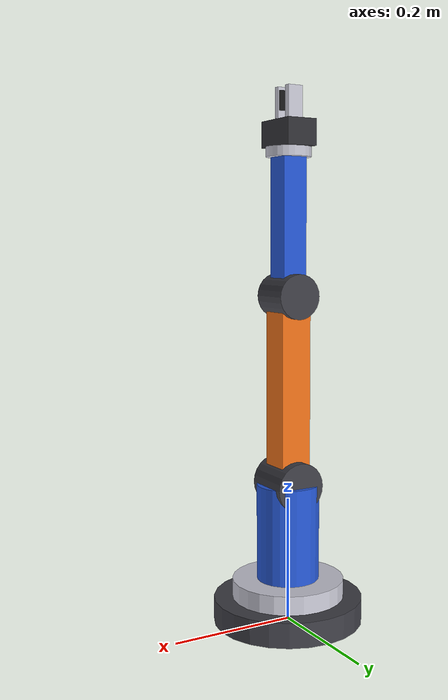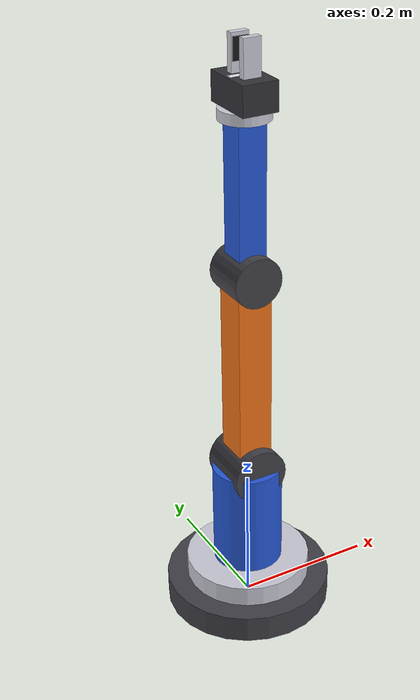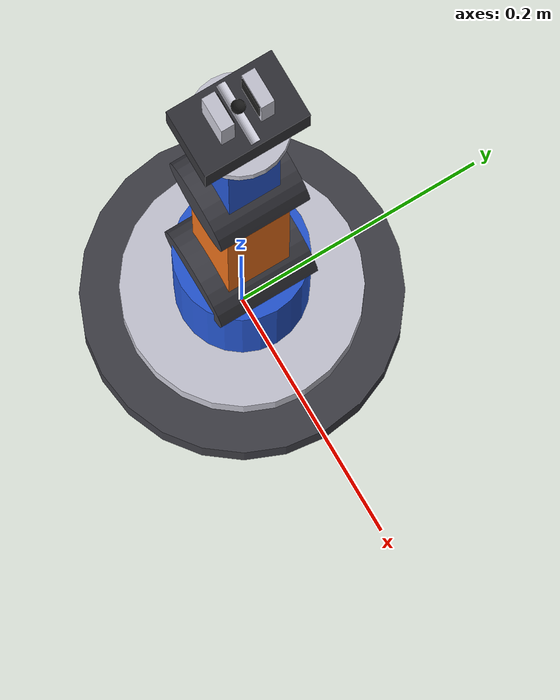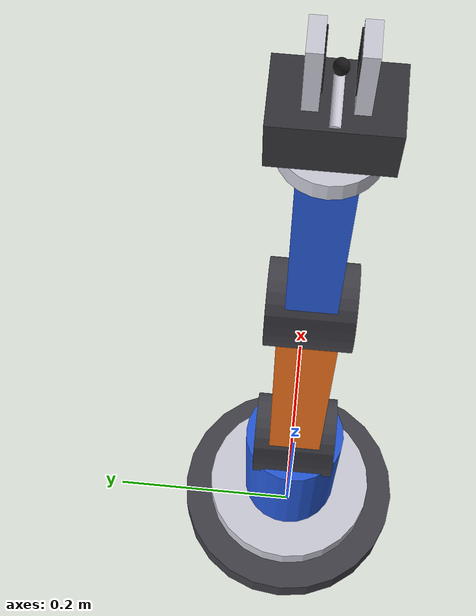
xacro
<?xml version="1.0"?>
<robot xmlns:xacro="http://www.ros.org/wiki/xacro" name="arm_3dof">

  <xacro:arg name="gazebo_system" default="ignition"/>
  <xacro:arg name="controllers_yaml" default="config/controllers.yaml"/>

  <!-- ==================== Materials for RViz ==================== -->
  <material name="dark_grey">
    <color rgba="0.25 0.25 0.28 1.0"/>
  </material>
  <material name="silver">
    <color rgba="0.8 0.8 0.85 1.0"/>
  </material>
  <material name="industrial_orange">
    <color rgba="0.95 0.45 0.1 1.0"/>
  </material>
  <material name="accent_blue">
    <color rgba="0.15 0.35 0.85 1.0"/>
  </material>
  <material name="gripper_body">
    <color rgba="0.2 0.2 0.22 1.0"/>
  </material>
  <material name="finger_pad">
    <color rgba="0.1 0.1 0.1 1.0"/>
  </material>

  <!-- ==================== World Anchor Link ==================== -->
  <!-- Anchoring base_link to world prevents the arm from tipping over under gravity in simulation -->
  <link name="world"/>

  <joint name="world_to_base" type="fixed">
    <parent link="world"/>
    <child link="base_link"/>
    <origin xyz="0 0 0" rpy="0 0 0"/>
  </joint>

  <!-- ==================== Base Link ==================== -->
  <!-- Stationary foundation pedestal -->
  <link name="base_link">
    <visual>
      <origin xyz="0 0 0.02" rpy="0 0 0"/>
      <geometry>
        <cylinder radius="0.12" length="0.04"/>
      </geometry>
      <material name="dark_grey"/>
    </visual>
    <collision>
      <origin xyz="0 0 0.02" rpy="0 0 0"/>
      <geometry>
        <cylinder radius="0.12" length="0.04"/>
      </geometry>
    </collision>
    <inertial>
      <origin xyz="0 0 0.02" rpy="0 0 0"/>
      <mass value="2.5"/>
      <inertia ixx="0.0093" ixy="0.0" ixz="0.0" iyy="0.0093" iyz="0.0" izz="0.018"/>
    </inertial>
  </link>

  <!-- ==================== Joint 1: Base Turret Rotation (Z-Axis) ==================== -->
  <!-- Left/right yaw rotation around the vertical Z-axis -->
  <joint name="joint1" type="revolute">
    <parent link="base_link"/>
    <child link="link1"/>
    <origin xyz="0 0 0.04" rpy="0 0 0"/>
    <axis xyz="0 0 1"/>
    <limit lower="-3.14159" upper="3.14159" effort="40.0" velocity="2.0"/>
    <dynamics damping="0.5" friction="0.1"/>
  </joint>

  <!-- Link 1: Rotating Turret and Shoulder Support Column -->
  <link name="link1">
    <visual>
      <!-- Lower rotating platform -->
      <origin xyz="0 0 0.015" rpy="0 0 0"/>
      <geometry>
        <cylinder radius="0.09" length="0.03"/>
      </geometry>
      <material name="silver"/>
    </visual>
    <visual>
      <!-- Shoulder bracket column -->
      <origin xyz="0 0 0.10" rpy="0 0 0"/>
      <geometry>
        <cylinder radius="0.05" length="0.17"/>
      </geometry>
      <material name="accent_blue"/>
    </visual>
    <visual>
      <!-- Shoulder pivot joint hub -->
      <origin xyz="0 0 0.185" rpy="1.5708 0 0"/>
      <geometry>
        <cylinder radius="0.04" length="0.08"/>
      </geometry>
      <material name="dark_grey"/>
    </visual>
    <collision>
      <origin xyz="0 0 0.10" rpy="0 0 0"/>
      <geometry>
        <cylinder radius="0.07" length="0.20"/>
      </geometry>
    </collision>
    <inertial>
      <origin xyz="0 0 0.09" rpy="0 0 0"/>
      <mass value="1.2"/>
      <inertia ixx="0.0048" ixy="0.0" ixz="0.0" iyy="0.0048" iyz="0.0" izz="0.0022"/>
    </inertial>
  </link>

  <!-- ==================== Joint 2: Shoulder Pitch (Y-Axis) ==================== -->
  <!-- Raises and lowers the upper arm. Operates in the X-Z vertical plane -->
  <joint name="joint2" type="revolute">
    <parent link="link1"/>
    <child link="link2"/>
    <origin xyz="0 0 0.185" rpy="0 0 0"/>
    <axis xyz="0 1 0"/>
    <limit lower="-1.745" upper="1.745" effort="40.0" velocity="2.0"/>
    <dynamics damping="0.5" friction="0.1"/>
  </joint>

  <!-- Link 2: Articulated Upper Arm -->
  <link name="link2">
    <visual>
      <!-- Upper arm body (length 0.30m) -->
      <origin xyz="0 0 0.15" rpy="0 0 0"/>
      <geometry>
        <box size="0.05 0.05 0.30"/>
      </geometry>
      <material name="industrial_orange"/>
    </visual>
    <visual>
      <!-- Elbow pivot joint hub -->
      <origin xyz="0 0 0.30" rpy="1.5708 0 0"/>
      <geometry>
        <cylinder radius="0.035" length="0.07"/>
      </geometry>
      <material name="dark_grey"/>
    </visual>
    <collision>
      <origin xyz="0 0 0.15" rpy="0 0 0"/>
      <geometry>
        <box size="0.05 0.05 0.30"/>
      </geometry>
    </collision>
    <inertial>
      <origin xyz="0 0 0.15" rpy="0 0 0"/>
      <mass value="0.8"/>
      <inertia ixx="0.00617" ixy="0.0" ixz="0.0" iyy="0.00617" iyz="0.0" izz="0.00033"/>
    </inertial>
  </link>

  <!-- ==================== Joint 3: Elbow Pitch (Y-Axis) ==================== -->
  <!-- Bends and extends the forearm. Axis is PARALLEL to Joint 2 (in the exact same mechanical plane) -->
  <joint name="joint3" type="revolute">
    <parent link="link2"/>
    <child link="link3"/>
    <origin xyz="0 0 0.30" rpy="0 0 0"/>
    <axis xyz="0 1 0"/>
    <limit lower="-2.094" upper="2.094" effort="30.0" velocity="2.0"/>
    <dynamics damping="0.3" friction="0.08"/>
  </joint>

  <!-- Link 3: Articulated Forearm -->
  <link name="link3">
    <visual>
      <!-- Forearm structural beam (length 0.22m) -->
      <origin xyz="0 0 0.11" rpy="0 0 0"/>
      <geometry>
        <box size="0.04 0.04 0.22"/>
      </geometry>
      <material name="accent_blue"/>
    </visual>
    <visual>
      <!-- Wrist tool mounting flange -->
      <origin xyz="0 0 0.22" rpy="0 0 0"/>
      <geometry>
        <cylinder radius="0.035" length="0.015"/>
      </geometry>
      <material name="silver"/>
    </visual>
    <collision>
      <origin xyz="0 0 0.11" rpy="0 0 0"/>
      <geometry>
        <box size="0.04 0.04 0.22"/>
      </geometry>
    </collision>
    <inertial>
      <origin xyz="0 0 0.11" rpy="0 0 0"/>
      <mass value="0.5"/>
      <inertia ixx="0.00208" ixy="0.0" ixz="0.0" iyy="0.00208" iyz="0.0" izz="0.00013"/>
    </inertial>
  </link>

  <!-- ==================== Wrist Mount Joint ==================== -->
  <joint name="tool_joint" type="fixed">
    <parent link="link3"/>
    <child link="gripper_base_link"/>
    <origin xyz="0 0 0.2275" rpy="0 0 0"/>
  </joint>

  <!-- ==================== Two-Finger Parallel Gripper ==================== -->
  <!-- Gripper Base Chassis -->
  <link name="gripper_base_link">
    <visual>
      <!-- Actuator main housing -->
      <origin xyz="0 0 0.02" rpy="0 0 0"/>
      <geometry>
        <box size="0.05 0.08 0.04"/>
      </geometry>
      <material name="gripper_body"/>
    </visual>
    <visual>
      <!-- Linear guide rail bar -->
      <origin xyz="0 0 0.038" rpy="0 1.5708 0"/>
      <geometry>
        <cylinder radius="0.004" length="0.045"/>
      </geometry>
      <material name="silver"/>
    </visual>
    <collision>
      <origin xyz="0 0 0.02" rpy="0 0 0"/>
      <geometry>
        <box size="0.05 0.08 0.04"/>
      </geometry>
    </collision>
    <inertial>
      <origin xyz="0 0 0.02" rpy="0 0 0"/>
      <mass value="0.3"/>
      <inertia ixx="0.00020" ixy="0.0" ixz="0.0" iyy="0.00010" iyz="0.0" izz="0.00022"/>
    </inertial>
  </link>

  <!-- Left Finger Joint (Prismatic) -->
  <joint name="left_finger_joint" type="prismatic">
    <parent link="gripper_base_link"/>
    <child link="left_finger_link"/>
    <origin xyz="0 0.015 0.04" rpy="0 0 0"/>
    <axis xyz="0 1 0"/>
    <limit lower="0.0" upper="0.035" effort="30.0" velocity="0.15"/>
    <dynamics damping="0.2" friction="0.05"/>
  </joint>

  <!-- Left Finger Link -->
  <link name="left_finger_link">
    <visual>
      <!-- Finger arm -->
      <origin xyz="0 0 0.025" rpy="0 0 0"/>
      <geometry>
        <box size="0.025 0.01 0.05"/>
      </geometry>
      <material name="silver"/>
    </visual>
    <visual>
      <!-- High friction gripping pad (inward facing towards center) -->
      <origin xyz="0 -0.004 0.03" rpy="0 0 0"/>
      <geometry>
        <box size="0.022 0.004 0.03"/>
      </geometry>
      <material name="finger_pad"/>
    </visual>
    <collision>
      <origin xyz="0 0 0.025" rpy="0 0 0"/>
      <geometry>
        <box size="0.025 0.012 0.05"/>
      </geometry>
    </collision>
    <inertial>
      <origin xyz="0 0 0.025" rpy="0 0 0"/>
      <mass value="0.05"/>
      <inertia ixx="0.000011" ixy="0.0" ixz="0.0" iyy="0.000013" iyz="0.0" izz="0.0000032"/>
    </inertial>
  </link>

  <!-- Right Finger Joint (Prismatic with Symmetrical Mimic Motion) -->
  <joint name="right_finger_joint" type="prismatic">
    <parent link="gripper_base_link"/>
    <child link="right_finger_link"/>
    <origin xyz="0 -0.015 0.04" rpy="0 0 0"/>
    <axis xyz="0 1 0"/>
    <limit lower="-0.035" upper="0.0" effort="30.0" velocity="0.15"/>
    <mimic joint="left_finger_joint" multiplier="-1.0" offset="0.0"/>
    <dynamics damping="0.2" friction="0.05"/>
  </joint>

  <!-- Right Finger Link -->
  <link name="right_finger_link">
    <visual>
      <!-- Finger arm -->
      <origin xyz="0 0 0.025" rpy="0 0 0"/>
      <geometry>
        <box size="0.025 0.01 0.05"/>
      </geometry>
      <material name="silver"/>
    </visual>
    <visual>
      <!-- High friction gripping pad (inward facing towards center) -->
      <origin xyz="0 0.004 0.03" rpy="0 0 0"/>
      <geometry>
        <box size="0.022 0.004 0.03"/>
      </geometry>
      <material name="finger_pad"/>
    </visual>
    <collision>
      <origin xyz="0 0 0.025" rpy="0 0 0"/>
      <geometry>
        <box size="0.025 0.012 0.05"/>
      </geometry>
    </collision>
    <inertial>
      <origin xyz="0 0 0.025" rpy="0 0 0"/>
      <mass value="0.05"/>
      <inertia ixx="0.000011" ixy="0.0" ixz="0.0" iyy="0.000013" iyz="0.0" izz="0.0000032"/>
    </inertial>
  </link>

  <!-- Tool Center Point (TCP) Link for Grasping / Forward Kinematics Tracking -->
  <joint name="tcp_joint" type="fixed">
    <parent link="gripper_base_link"/>
    <child link="tool_link"/>
    <origin xyz="0 0 0.065" rpy="0 0 0"/>
  </joint>

  <link name="tool_link">
    <visual>
      <origin xyz="0 0 0" rpy="0 0 0"/>
      <geometry>
        <sphere radius="0.005"/>
      </geometry>
      <material name="finger_pad"/>
    </visual>
    <inertial>
      <origin xyz="0 0 0" rpy="0 0 0"/>
      <mass value="0.005"/>
      <inertia ixx="0.0000001" ixy="0.0" ixz="0.0" iyy="0.0000001" iyz="0.0" izz="0.0000001"/>
    </inertial>
  </link>

  <!-- ==================== Gazebo Physics & Friction Properties ==================== -->
  <gazebo reference="base_link">
    <material>Gazebo/DarkGrey</material>
    <mu1>0.9</mu1>
    <mu2>0.9</mu2>
  </gazebo>

  <gazebo reference="link1">
    <material>Gazebo/Blue</material>
    <mu1>0.6</mu1>
    <mu2>0.6</mu2>
  </gazebo>

  <gazebo reference="link2">
    <material>Gazebo/Orange</material>
    <mu1>0.6</mu1>
    <mu2>0.6</mu2>
  </gazebo>

  <gazebo reference="link3">
    <material>Gazebo/Blue</material>
    <mu1>0.6</mu1>
    <mu2>0.6</mu2>
  </gazebo>

  <gazebo reference="gripper_base_link">
    <material>Gazebo/DarkGrey</material>
    <mu1>0.8</mu1>
    <mu2>0.8</mu2>
  </gazebo>

  <!-- High-friction contact surfaces for realistic physics grasping -->
  <gazebo reference="left_finger_link">
    <material>Gazebo/Grey</material>
    <mu1>1.5</mu1>
    <mu2>1.5</mu2>
    <kp>1000000.0</kp>
    <kd>1.0</kd>
    <minDepth>0.001</minDepth>
    <maxVel>0.1</maxVel>
  </gazebo>

  <gazebo reference="right_finger_link">
    <material>Gazebo/Grey</material>
    <mu1>1.5</mu1>
    <mu2>1.5</mu2>
    <kp>1000000.0</kp>
    <kd>1.0</kd>
    <minDepth>0.001</minDepth>
    <maxVel>0.1</maxVel>
  </gazebo>

  <!-- ==================== ros2_control Hardware Interface ==================== -->
  <ros2_control name="Arm3dofHardware" type="system">
    <hardware>
      <xacro:if value="${'$(arg gazebo_system)' == 'ignition'}">
        <plugin>ign_ros2_control/IgnitionSystem</plugin>
      </xacro:if>
      <xacro:unless value="${'$(arg gazebo_system)' == 'ignition'}">
        <plugin>gazebo_ros2_control/GazeboSystem</plugin>
      </xacro:unless>
    </hardware>

    <!-- Arm Revolute Joints -->
    <joint name="joint1">
      <command_interface name="position">
        <param name="min">-3.14159</param>
        <param name="max">3.14159</param>
      </command_interface>
      <state_interface name="position"/>
      <state_interface name="velocity"/>
    </joint>

    <joint name="joint2">
      <command_interface name="position">
        <param name="min">-1.745</param>
        <param name="max">1.745</param>
      </command_interface>
      <state_interface name="position"/>
      <state_interface name="velocity"/>
    </joint>

    <joint name="joint3">
      <command_interface name="position">
        <param name="min">-2.094</param>
        <param name="max">2.094</param>
      </command_interface>
      <state_interface name="position"/>
      <state_interface name="velocity"/>
    </joint>

    <!-- Gripper Prismatic Joints for Actuation -->
    <joint name="left_finger_joint">
      <command_interface name="position">
        <param name="min">0.0</param>
        <param name="max">0.035</param>
      </command_interface>
      <state_interface name="position"/>
      <state_interface name="velocity"/>
    </joint>

    <joint name="right_finger_joint">
      <command_interface name="position">
        <param name="min">-0.035</param>
        <param name="max">0.0</param>
      </command_interface>
      <state_interface name="position"/>
      <state_interface name="velocity"/>
    </joint>
  </ros2_control>

  <!-- ==================== Gazebo ros2_control Plugin ==================== -->
  <xacro:if value="${'$(arg gazebo_system)' == 'ignition'}">
    <gazebo>
      <plugin filename="ign_ros2_control-system" name="ign_ros2_control::IgnitionROS2ControlPlugin">
        <parameters>$(arg controllers_yaml)</parameters>
      </plugin>
    </gazebo>
  </xacro:if>
  <xacro:unless value="${'$(arg gazebo_system)' == 'ignition'}">
    <gazebo>
      <plugin filename="libgazebo_ros2_control.so" name="gazebo_ros2_control">
        <parameters>$(arg controllers_yaml)</parameters>
      </plugin>
    </gazebo>
  </xacro:unless>

</robot>
